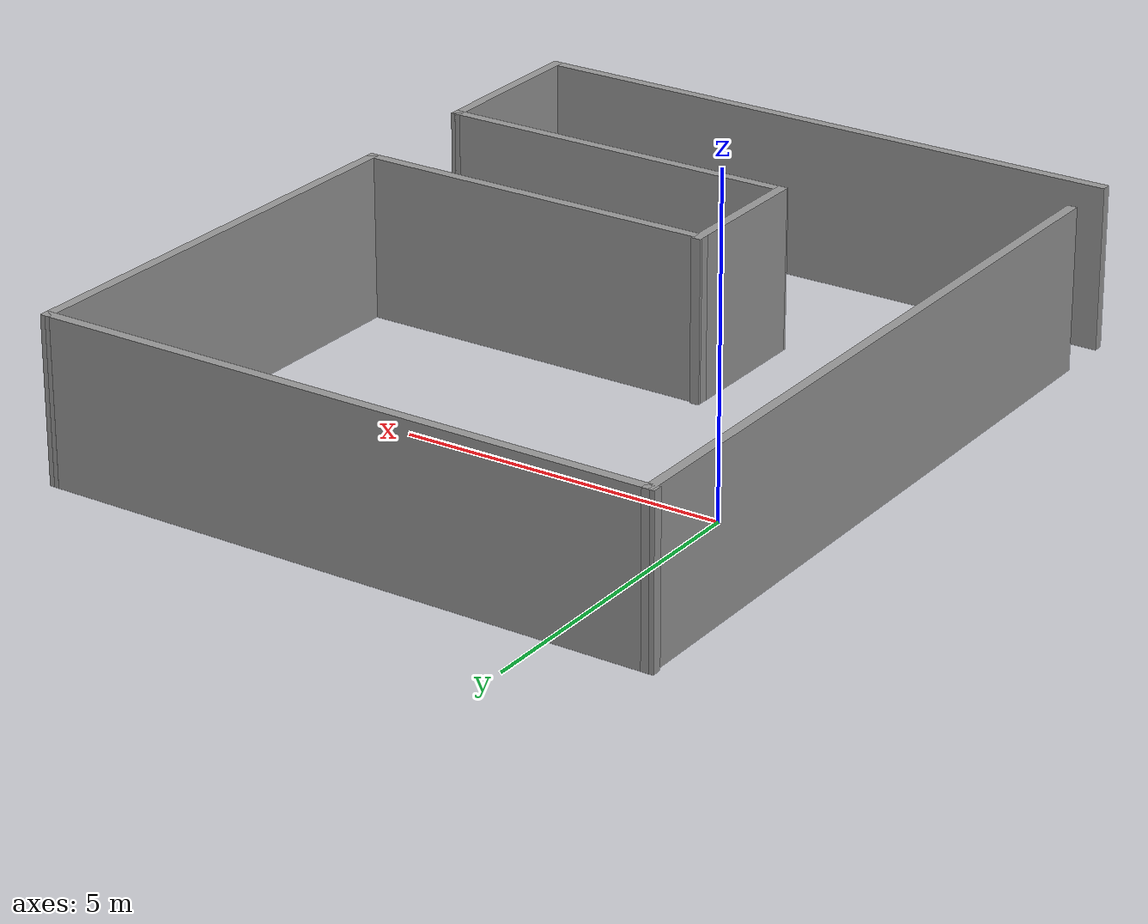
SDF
<?xml version='1.0'?>
<sdf version='1.6'>
  <model name='rooms'>
    <pose frame=''>3.24222 -1.96547 0 0 -0 0</pose>
    <link name='Wall_1'>
      <collision name='Wall_1_Collision'>
        <geometry>
          <box>
            <size>0.15 0.15 2.5</size>
          </box>
        </geometry>
        <pose frame=''>0 0 1.25 0 -0 0</pose>
      </collision>
      <visual name='Wall_1_Visual'>
        <pose frame=''>0 0 1.25 0 -0 0</pose>
        <geometry>
          <box>
            <size>0.15 0.15 2.5</size>
          </box>
        </geometry>
        <material>
          <script>
            <uri>file://media/materials/scripts/gazebo.material</uri>
            <name>Gazebo/Grey</name>
          </script>
          <ambient>1 1 1 1</ambient>
        </material>
      </visual>
      <pose frame=''>4.75175 5.87683 0 0 -0 0</pose>
    </link>
    <link name='Wall_10'>
      <collision name='Wall_10_Collision'>
        <geometry>
          <box>
            <size>0.15 0.15 2.5</size>
          </box>
        </geometry>
        <pose frame=''>0 0 1.25 0 -0 0</pose>
      </collision>
      <visual name='Wall_10_Visual'>
        <pose frame=''>0 0 1.25 0 -0 0</pose>
        <geometry>
          <box>
            <size>0.15 0.15 2.5</size>
          </box>
        </geometry>
        <material>
          <script>
            <uri>file://media/materials/scripts/gazebo.material</uri>
            <name>Gazebo/Grey</name>
          </script>
          <ambient>1 1 1 1</ambient>
        </material>
      </visual>
      <pose frame=''>-4.71225 5.92282 0 0 -0 0</pose>
    </link>
    <link name='Wall_12'>
      <collision name='Wall_12_Collision'>
        <geometry>
          <box>
            <size>9.61411 0.15 2.5</size>
          </box>
        </geometry>
        <pose frame=''>0 0 1.25 0 -0 0</pose>
      </collision>
      <visual name='Wall_12_Visual'>
        <pose frame=''>0 0 1.25 0 -0 0</pose>
        <geometry>
          <box>
            <size>9.61411 0.15 2.5</size>
          </box>
        </geometry>
        <material>
          <script>
            <uri>file://media/materials/scripts/gazebo.material</uri>
            <name>Gazebo/Grey</name>
          </script>
          <ambient>1 1 1 1</ambient>
        </material>
      </visual>
      <pose frame=''>-0.020481 5.89982 0 0 0 -0.00486</pose>
    </link>
    <link name='Wall_13'>
      <collision name='Wall_13_Collision'>
        <geometry>
          <box>
            <size>0.15 0.15 2.5</size>
          </box>
        </geometry>
        <pose frame=''>0 0 1.25 0 -0 0</pose>
      </collision>
      <visual name='Wall_13_Visual'>
        <pose frame=''>0 0 1.25 0 -0 0</pose>
        <geometry>
          <box>
            <size>0.15 0.15 2.5</size>
          </box>
        </geometry>
        <material>
          <script>
            <uri>file://media/materials/scripts/gazebo.material</uri>
            <name>Gazebo/Grey</name>
          </script>
          <ambient>1 1 1 1</ambient>
        </material>
      </visual>
      <pose frame=''>4.75175 5.87683 0 0 -0 0</pose>
    </link>
    <link name='Wall_15'>
      <collision name='Wall_15_Collision'>
        <geometry>
          <box>
            <size>5.75 0.15 2.5</size>
          </box>
        </geometry>
        <pose frame=''>0 0 1.25 0 -0 0</pose>
      </collision>
      <visual name='Wall_15_Visual'>
        <pose frame=''>0 0 1.25 0 -0 0</pose>
        <geometry>
          <box>
            <size>5.75 0.15 2.5</size>
          </box>
        </geometry>
        <material>
          <script>
            <uri>file://media/materials/scripts/gazebo.material</uri>
            <name>Gazebo/Grey</name>
          </script>
          <ambient>1 1 1 1</ambient>
        </material>
      </visual>
      <pose frame=''>1.84829 -1.17727 0 0 -0 3.14159</pose>
    </link>
    <link name='Wall_16'>
      <collision name='Wall_16_Collision'>
        <geometry>
          <box>
            <size>2.33649 0.15 2.5</size>
          </box>
        </geometry>
        <pose frame=''>0 0 1.25 0 -0 0</pose>
      </collision>
      <visual name='Wall_16_Visual'>
        <pose frame=''>0 0 1.25 0 -0 0</pose>
        <geometry>
          <box>
            <size>2.33649 0.15 2.5</size>
          </box>
        </geometry>
        <material>
          <script>
            <uri>file://media/materials/scripts/gazebo.material</uri>
            <name>Gazebo/Grey</name>
          </script>
          <ambient>1 1 1 1</ambient>
        </material>
      </visual>
      <pose frame=''>-0.951466 -2.23029 0 0 0 -1.57058</pose>
    </link>
    <link name='Wall_17'>
      <collision name='Wall_17_Collision'>
        <geometry>
          <box>
            <size>5.75 0.15 2.5</size>
          </box>
        </geometry>
        <pose frame=''>0 0 1.25 0 -0 0</pose>
      </collision>
      <visual name='Wall_17_Visual'>
        <pose frame=''>0 0 1.25 0 -0 0</pose>
        <geometry>
          <box>
            <size>5.75 0.15 2.5</size>
          </box>
        </geometry>
        <material>
          <script>
            <uri>file://media/materials/scripts/gazebo.material</uri>
            <name>Gazebo/Grey</name>
          </script>
          <ambient>1 1 1 1</ambient>
        </material>
      </visual>
      <pose frame=''>1.84878 -3.32353 0 0 -0 0</pose>
    </link>
    <link name='Wall_18'>
      <collision name='Wall_18_Collision'>
        <geometry>
          <box>
            <size>2.74964 0.15 2.5</size>
          </box>
        </geometry>
        <pose frame=''>0 0 1.25 0 -0 0</pose>
      </collision>
      <visual name='Wall_18_Visual'>
        <pose frame=''>0 0 1.25 0 -0 0</pose>
        <geometry>
          <box>
            <size>2.74964 0.15 2.5</size>
          </box>
        </geometry>
        <material>
          <script>
            <uri>file://media/materials/scripts/gazebo.material</uri>
            <name>Gazebo/Grey</name>
          </script>
          <ambient>1 1 1 1</ambient>
        </material>
      </visual>
      <pose frame=''>4.64853 -4.62335 0 0 0 -1.57098</pose>
    </link>
    <link name='Wall_19'>
      <collision name='Wall_19_Collision'>
        <geometry>
          <box>
            <size>9.5 0.15 2.5</size>
          </box>
        </geometry>
        <pose frame=''>0 0 1.25 0 -0 0</pose>
      </collision>
      <visual name='Wall_19_Visual'>
        <pose frame=''>0 0 1.25 0 -0 0</pose>
        <geometry>
          <box>
            <size>9.5 0.15 2.5</size>
          </box>
        </geometry>
        <material>
          <script>
            <uri>file://media/materials/scripts/gazebo.material</uri>
            <name>Gazebo/Grey</name>
          </script>
          <ambient>1 1 1 1</ambient>
        </material>
      </visual>
      <pose frame=''>-0.026708 -5.92317 0 0 -0 3.14159</pose>
    </link>
    <link name='Wall_22'>
      <collision name='Wall_22_Collision'>
        <geometry>
          <box>
            <size>11 0.15 2.5</size>
          </box>
        </geometry>
        <pose frame=''>0 0 1.25 0 -0 0</pose>
      </collision>
      <visual name='Wall_22_Visual'>
        <pose frame=''>0 0 1.25 0 -0 0</pose>
        <geometry>
          <box>
            <size>11 0.15 2.5</size>
          </box>
        </geometry>
        <material>
          <script>
            <uri>file://media/materials/scripts/gazebo.material</uri>
            <name>Gazebo/Grey</name>
          </script>
          <ambient>1 1 1 1</ambient>
        </material>
      </visual>
      <pose frame=''>-4.71225 0.497825 0 0 0 -1.5708</pose>
    </link>
    <link name='Wall_23'>
      <collision name='Wall_23_Collision'>
        <geometry>
          <box>
            <size>0.15 0.15 2.5</size>
          </box>
        </geometry>
        <pose frame=''>0 0 1.25 0 -0 0</pose>
      </collision>
      <visual name='Wall_23_Visual'>
        <pose frame=''>0 0 1.25 0 -0 0</pose>
        <geometry>
          <box>
            <size>0.15 0.15 2.5</size>
          </box>
        </geometry>
        <material>
          <script>
            <uri>file://media/materials/scripts/gazebo.material</uri>
            <name>Gazebo/Grey</name>
          </script>
          <ambient>1 1 1 1</ambient>
        </material>
      </visual>
      <pose frame=''>-4.71225 -4.92718 0 0 -0 0</pose>
    </link>
    <link name='Wall_3'>
      <collision name='Wall_3_Collision'>
        <geometry>
          <box>
            <size>7.16463 0.15 2.5</size>
          </box>
        </geometry>
        <pose frame=''>0 0 1.25 0 -0 0</pose>
      </collision>
      <visual name='Wall_3_Visual'>
        <pose frame=''>0 0 1.25 0 -0 0</pose>
        <geometry>
          <box>
            <size>7.16463 0.15 2.5</size>
          </box>
        </geometry>
        <material>
          <script>
            <uri>file://media/materials/scripts/gazebo.material</uri>
            <name>Gazebo/Grey</name>
          </script>
          <ambient>1 1 1 1</ambient>
        </material>
      </visual>
      <pose frame=''>4.70002 2.36989 0 0 0 -1.58554</pose>
    </link>
    <static>1</static>
  </model>
</sdf>
